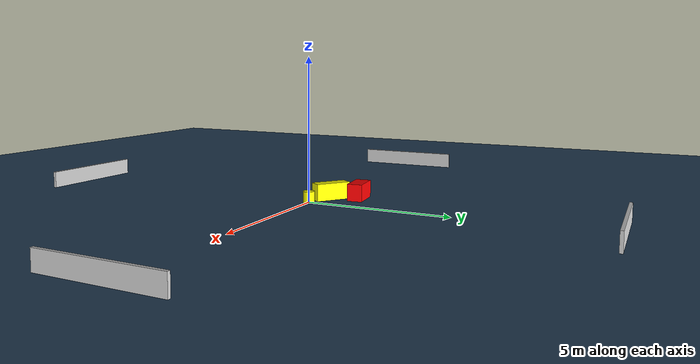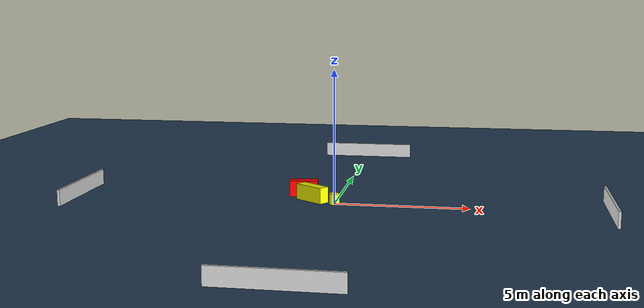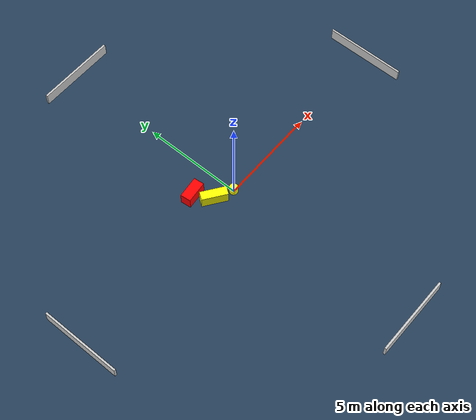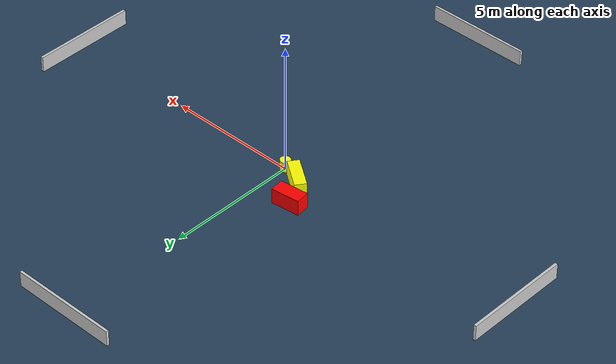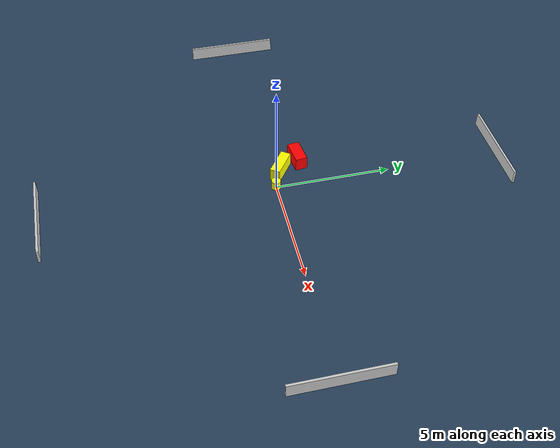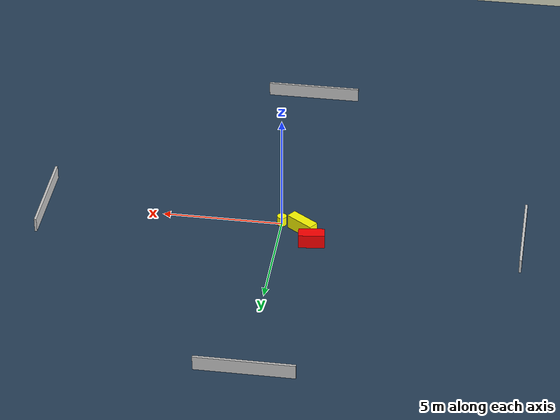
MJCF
<?xml version="1.0" ?>
<mujoco model="generated_environment">
  <option timestep="0.01" integrator="RK4" cone="elliptic"/>
  <default>
    <geom density="1"/>
  </default>
  <asset>
    <texture builtin="gradient" height="3072" name="skybox" rgb1="0.3 0.5 0.7" rgb2="0 0 0" type="skybox" width="512"/>
    <texture builtin="checker" height="300" name="groundplane" rgb1="0.2 0.3 0.4" rgb2="0.1 0.2 0.3" type="2d" width="300"/>
    <material name="groundplane" reflectance="0.2" texrepeat="5 5" texture="groundplane"/>
  </asset>
  <worldbody>
    <light dir="0 0 -1" directional="true" pos="0 0 1.5"/>
    <geom condim="3" friction="0.5 0.005 0.001" material="groundplane" name="floor" pos="0 0 0" size="0 0 0.05" type="plane"/>
    <body name="walls">
      <geom name="wall_1" condim="4" pos="-10.0 0.0 0.3" rgba="0.800000011920929 0.800000011920929 0.800000011920929 1.0" size="0.05 2.0 0.3" type="box"/>
      <geom name="wall_2" condim="4" pos="10.0 0.0 0.3" rgba="0.800000011920929 0.800000011920929 0.800000011920929 1.0" size="0.05 2.0 0.3" type="box"/>
      <geom name="wall_3" condim="4" pos="0.0 -10.0 0.3" rgba="0.800000011920929 0.800000011920929 0.800000011920929 1.0" size="2.0 0.05 0.3" type="box"/>
      <geom name="wall_4" condim="4" pos="0.0 10.0 0.3" rgba="0.800000011920929 0.800000011920929 0.800000011920929 1.0" size="2.0 0.05 0.3" type="box"/>
    </body>
    <body name="robot">
      <joint name="joint_x" type="slide" pos="0 0 0" axis="1 0 0"/>
      <joint name="joint_y" type="slide" pos="0 0 0" axis="0 1 0"/>
      <geom name="robot" type="cylinder" pos="0.0 0.0 0.2" size="0.2 0.2 0.0" mass="5.0" friction="1.0 0.005 0.0001" condim="4" rgba="1.0 1.0 0.0 1.0"/>
    </body>
    <body name="obstacle_1_movable">
      <geom name="obstacle_1_movable" condim="4" pos="-0.9132157489580052 0.39929672989151827 0.3" euler="0 0 234.68530940599967" friction="0.0 0.005 0.001" rgba="1.0 1.0 0.0 1.0" size="0.21855296213720476 0.6361150245136566 0.3" type="box" mass="0.1"/>
      <joint type="free"/>
    </body>
    <body name="obstacle_2_static">
      <geom name="obstacle_2_static" condim="4" pos="-1.4094326059908415 1.2714171691356644 0.3" euler="0 0 96.41993552062497" friction="0.0 0.005 0.001" rgba="1.0 0.0 0.0 1.0" size="0.2607278552854957 0.5406725958236633 0.3" type="box"/>
    </body>
  </worldbody>
  <actuator>
    <motor name="actuator_x" joint="joint_x" gear="1" ctrlrange="-1 1"/>
    <motor name="actuator_y" joint="joint_y" gear="1" ctrlrange="-1 1"/>
  </actuator>
</mujoco>
